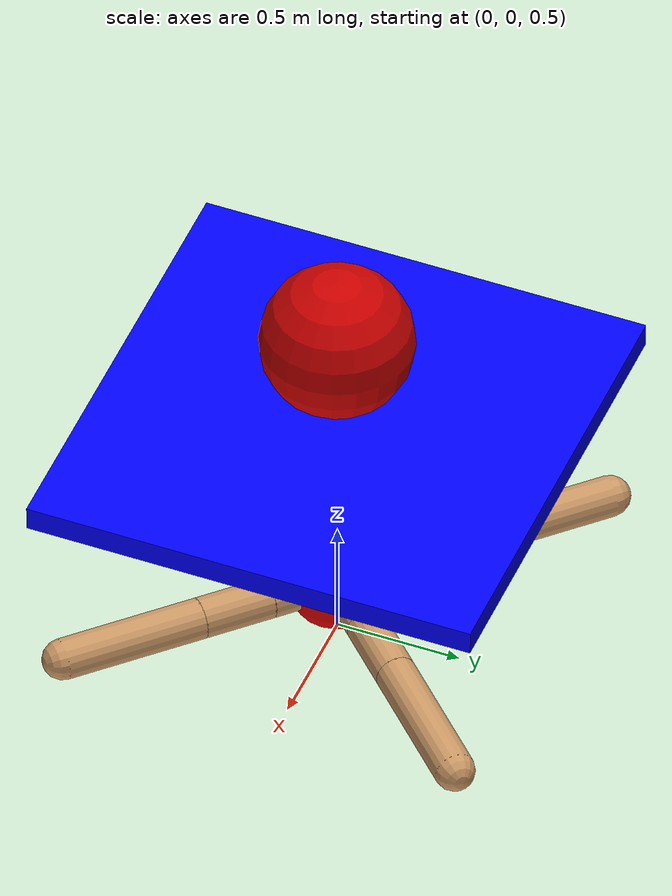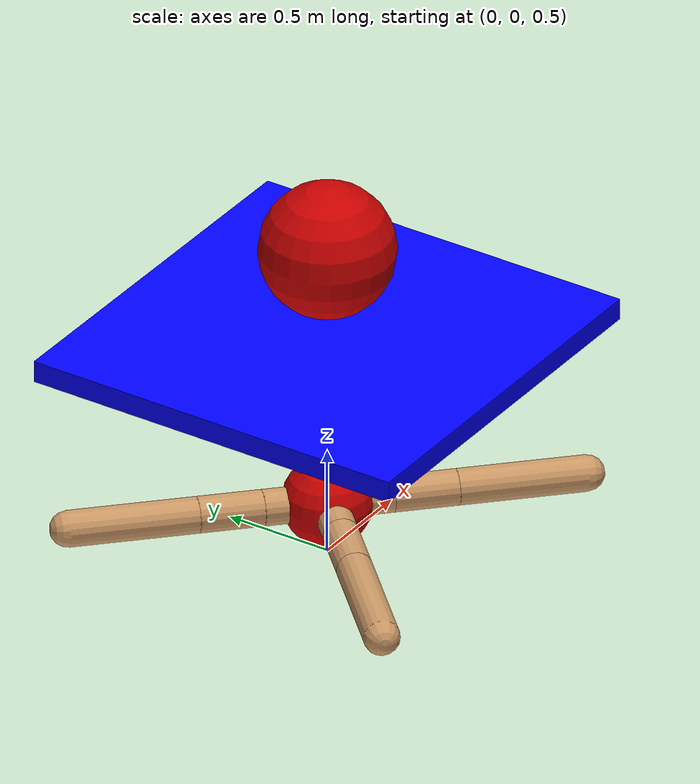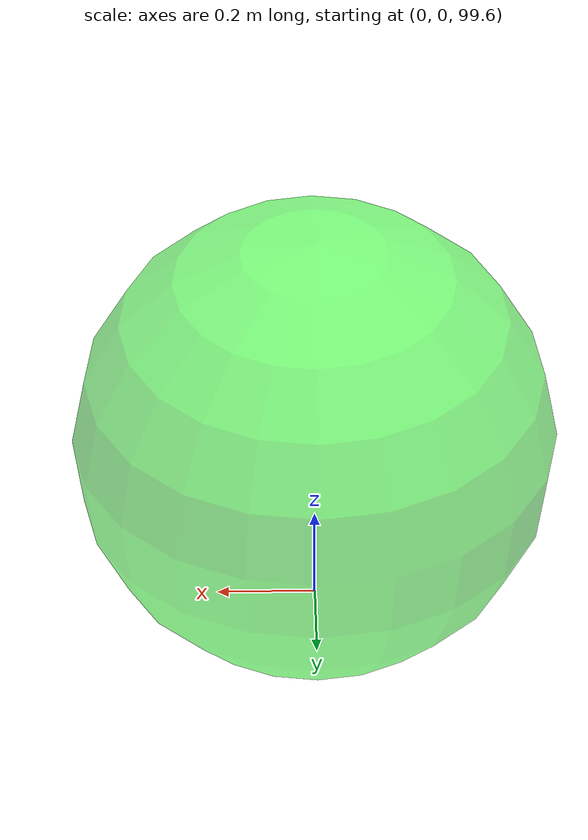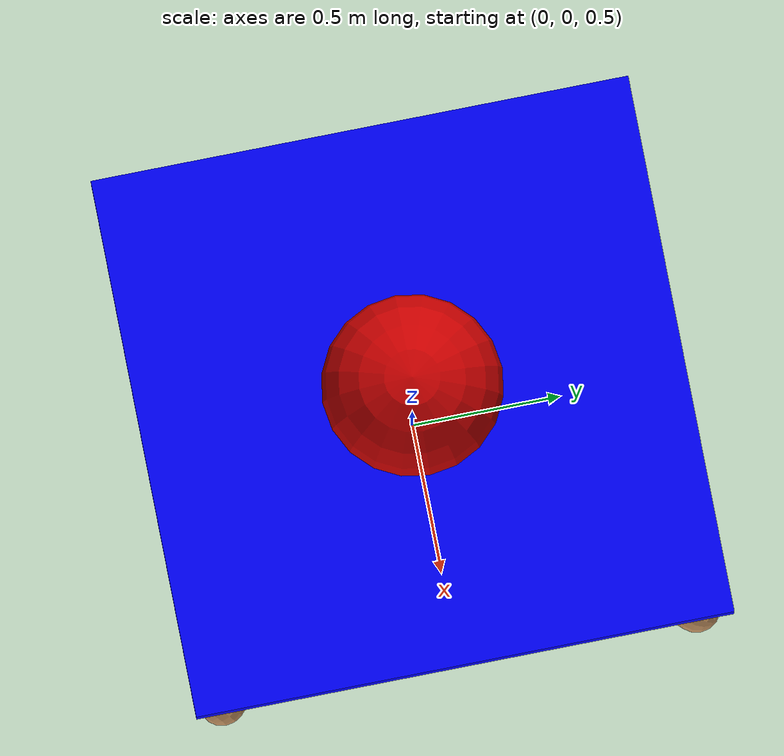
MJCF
<mujoco model="ant_with_ball">
  <compiler angle="degree" coordinate="local" inertiafromgeom="true"/>
  <option integrator="RK4" timestep="0.01" gravity="0 0 -9.81"/>

  <custom>
    <numeric data="0.0 0.0 0.55 1.0 0.0 0.0 0.0 0.0 1.0 0.0 -1.0 0.0 -1.0 0.0 1.0" name="init_qpos"/>
  </custom>
  <default>
    <joint armature="1" damping="1" limited="true"/>
    <geom conaffinity="0" condim="3" density="5.0" friction="1 0.5 0.5" margin="0.01" rgba="0.8 0.6 0.4 1"/>
  </default>
  <asset>
      <texture type="skybox" builtin="gradient" rgb1=".4 .5 .6" rgb2="0 0 0" width="100" height="100"/>
      <texture builtin="flat" height="1278" name="texgeom" random="0.01" rgb1="0.9 0.9 0.9" rgb2="0.9 0.9 0.9" type="cube" width="127"/>
      <texture builtin="checker" height="100" name="texplane" rgb1="0 0 0" rgb2="0.8 0.8 0.8" type="2d" width="100"/>
      <material name="MatPlane" reflectance="0.5" shininess="1" specular="1" texrepeat="22 22" texture="texplane"/>
      <material name="geom" texture="texgeom" texuniform="true"/>
  </asset>
  <worldbody>
    <light cutoff="100" diffuse="1 1 1" dir="-0 0 -1.3" directional="true" exponent="1" pos="0 0 1.3" specular=".1 .1 .1"/>
    <geom conaffinity="1" condim="3" name="floor" pos="0 0 0" rgba="0.8 0.9 0.8 1" size="140 140 140" type="plane" material="MatPlane"/>

    <body name="falling_ball" pos="0 0 2">
      <joint name="falling_ball_joint" type="free" limited="false" damping="0.1"/>
      <geom name="falling_ball_geom" conaffinity="1" type="sphere" size="0.3" density="10" rgba="0.8 0.0 0.0 1" solref="0.01 0.1" solimp="0.1 0.95 0.001"/>
    </body>

    <geom name="safety_marker" type="sphere" size="0.5" pos="0 0 100" rgba="0 1 0 0.5" contype="0" conaffinity="0"/>

    <body name="torso" pos="0 0 0.75">
      <camera name="track_camera" mode="trackcom" pos="0 -7.5 1.5" xyaxes="1 0 0 0 0.10 1"/>

      <geom name="torso_geom" pos="0 0 0" size="0.2" type="sphere" rgba="0.8 0.0 0.0 1.0"/>
      <joint armature="0" damping="0" limited="false" margin="0.01" name="root" pos="0 0 0" type="free"/>
      <geom name="axis_geom" pos="0 0 0.4" size="0.05 0.4" type="cylinder" conaffinity="0"  rgba="0.0 0.8 0.0 1.0"/>
      <geom name="plate_geom" pos="0 0 0.8" size="0.9 0.9 0.05" type="box" rgba="0.0 0.0 1.0 1.0"/>

      <body name="front_left_leg" pos="0 0 0">
        <geom fromto="0.0 0.0 0.0 0.2 0.2 0.0" name="aux_1_geom" size="0.08" type="capsule" rgba="0.8 0.6 .4 1" />
        <body name="aux_1" pos="0.2 0.2 0">
          <joint axis="0 0 1" name="hip_1" pos="0.0 0.0 0.0" range="-30 30" type="hinge"/>
          <geom fromto="0.0 0.0 0.0 0.2 0.2 0.0" name="left_leg_geom" size="0.08" type="capsule" rgba="0.8 0.6 .4 1" />
          <body pos="0.2 0.2 0">
            <joint axis="-1 1 0" name="ankle_1" pos="0.0 0.0 0.0" range="30 70" type="hinge"/>
            <geom fromto="0.0 0.0 0.0 0.4 0.4 0.0" name="left_ankle_geom" size="0.08" type="capsule" rgba="0.8 0.6 .4 1" />
          </body>
        </body>
      </body>

      <body name="front_right_leg" pos="0 0 0">
        <geom fromto="0.0 0.0 0.0 -0.2 0.2 0.0" name="aux_2_geom" size="0.08" type="capsule" rgba="0.8 0.6 .4 1"  />
        <body name="aux_2" pos="-0.2 0.2 0">
          <joint axis="0 0 1" name="hip_2" pos="0.0 0.0 0.0" range="-30 30" type="hinge"/>
          <geom fromto="0.0 0.0 0.0 -0.2 0.2 0.0" name="right_leg_geom" size="0.08" type="capsule" rgba="0.8 0.6 .4 1" />
          <body pos="-0.2 0.2 0">
            <joint axis="1 1 0" name="ankle_2" pos="0.0 0.0 0.0" range="-70 -30" type="hinge"/>
            <geom fromto="0.0 0.0 0.0 -0.4 0.4 0.0" name="right_ankle_geom" size="0.08" type="capsule" rgba="0.8 0.6 .4 1" />
          </body>
        </body>
      </body>

      <body name="back_leg" pos="0 0 0">
        <geom fromto="0.0 0.0 0.0 -0.2 -0.2 0.0" name="aux_3_geom" size="0.08" type="capsule" rgba="0.8 0.6 .4 1"  />
        <body name="aux_3" pos="-0.2 -0.2 0">
          <joint axis="0 0 1" name="hip_3" pos="0.0 0.0 0.0" range="-30 30" type="hinge"/>
          <geom fromto="0.0 0.0 0.0 -0.2 -0.2 0.0" name="back_leg_geom" size="0.08" type="capsule" rgba="0.8 0.6 .4 1" />
          <body pos="-0.2 -0.2 0">
            <joint axis="-1 1 0" name="ankle_3" pos="0.0 0.0 0.0" range="-70 -30" type="hinge"/>
            <geom fromto="0.0 0.0 0.0 -0.4 -0.4 0.0" name="third_ankle_geom" size="0.08" type="capsule" rgba="0.8 0.6 .4 1" />
          </body>
        </body>
      </body>

      <body name="right_back_leg" pos="0 0 0">
        <geom fromto="0.0 0.0 0.0 0.2 -0.2 0.0" name="aux_4_geom" size="0.08" type="capsule" rgba="0.8 0.6 .4 1" />
        <body name="aux_4" pos="0.2 -0.2 0">
          <joint axis="0 0 1" name="hip_4" pos="0.0 0.0 0.0" range="-30 30" type="hinge"/>
          <geom fromto="0.0 0.0 0.0 0.2 -0.2 0.0" name="rightback_leg_geom" size="0.08" type="capsule" rgba="0.8 0.6 .4 1" />
          <body pos="0.2 -0.2 0">
            <joint axis="1 1 0" name="ankle_4" pos="0.0 0.0 0.0" range="30 70" type="hinge"/>
            <geom fromto="0.0 0.0 0.0 0.4 -0.4 0.0" name="fourth_ankle_geom" size="0.08" type="capsule" rgba="0.8 0.6 .4 1" />
          </body>
        </body>
      </body>
    </body>
  </worldbody>

  <actuator>
    <motor ctrllimited="true" ctrlrange="-1.0 1.0" joint="hip_4"   gear="80"/>
    <motor ctrllimited="true" ctrlrange="-1.0 1.0" joint="ankle_4" gear="80"/>
    <motor ctrllimited="true" ctrlrange="-1.0 1.0" joint="hip_1"   gear="80"/>
    <motor ctrllimited="true" ctrlrange="-1.0 1.0" joint="ankle_1" gear="80"/>
    <motor ctrllimited="true" ctrlrange="-1.0 1.0" joint="hip_2"   gear="80"/>
    <motor ctrllimited="true" ctrlrange="-1.0 1.0" joint="ankle_2" gear="80"/>
    <motor ctrllimited="true" ctrlrange="-1.0 1.0" joint="hip_3"   gear="80"/>
    <motor ctrllimited="true" ctrlrange="-1.0 1.0" joint="ankle_3" gear="80"/>
  </actuator>
</mujoco>
